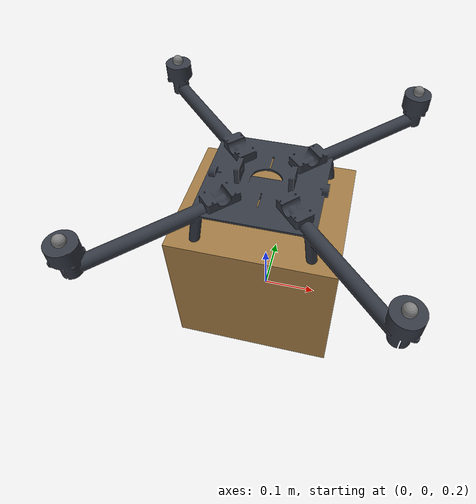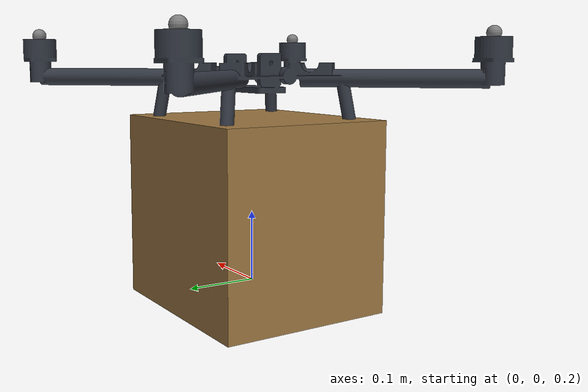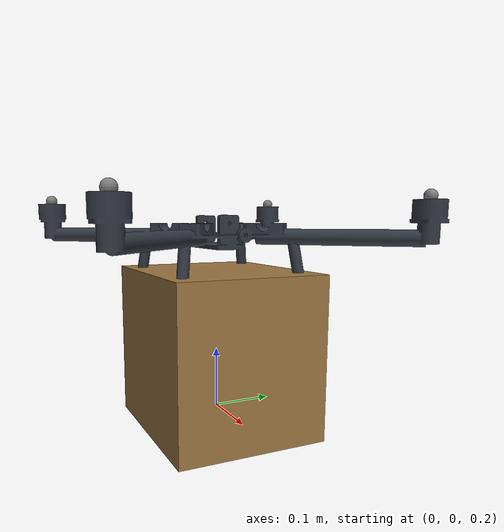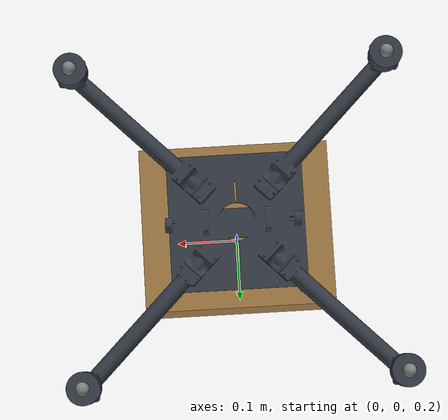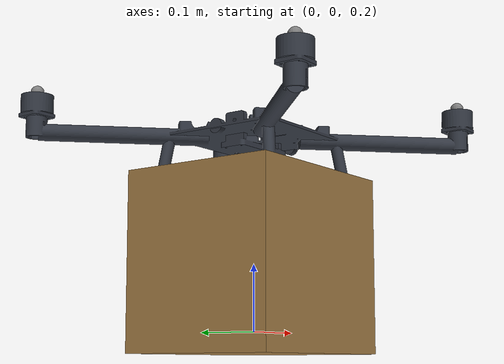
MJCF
<mujoco model="delivery_quad">
  <compiler angle="radian" meshdir="meshes"/>
  <option timestep="0.002" gravity="0 0 -9.81" integrator="RK4"/>
  <asset><mesh name="airframe" file="airframe.stl"/></asset>
  <worldbody>
    <body name="base_link" pos="0 0 0.5">
      <freejoint/>
      <inertial pos="0 0 0" mass="4.0700" fullinertia="0.077220 0.077220 0.127661 0.000000 0.000000 0.000000"/>
      <geom type="mesh" mesh="airframe" contype="0" conaffinity="0" rgba="0.2 0.22 0.26 1"/>
      <geom type="box" size="0.11 0.11 0.045" pos="0 0 0.0013" rgba="0.2 0.22 0.26 0"/>
      <site name="rotor0" pos="0.2298 0.2298 0.0513" size="0.01"/>
      <site name="rotor1" pos="-0.2298 0.2298 0.0513" size="0.01"/>
      <site name="rotor2" pos="-0.2298 -0.2298 0.0513" size="0.01"/>
      <site name="rotor3" pos="0.2298 -0.2298 0.0513" size="0.01"/>
      <body name="cardan_ring" pos="0 0 -0.0687">
        <joint name="cardan_roll" type="hinge" axis="1 0 0" range="-0.436 0.436" damping="0.02"/>
        <inertial pos="0 0 0" mass="0.06" diaginertia="1e-4 1e-4 1.8e-4"/>
        <body name="payload" pos="0 0 0">
          <joint name="cardan_pitch" type="hinge" axis="0 1 0" range="-0.436 0.436" damping="0.02"/>
          <inertial pos="0 0 -0.1300" mass="1.5000" diaginertia="0.016666 0.019346 0.018056"/>
          <geom type="box" size="0.1440 0.1240 0.1340" pos="0 0 -0.1300" rgba="0.62 0.47 0.26 1"/>
        </body>
      </body>
    </body>
  </worldbody>
  <actuator>
    <motor name="thrust0" site="rotor0" gear="0 0 1 0 0 0.016" ctrlrange="0 26"/>
    <motor name="thrust1" site="rotor1" gear="0 0 1 0 0 -0.016" ctrlrange="0 26"/>
    <motor name="thrust2" site="rotor2" gear="0 0 1 0 0 0.016" ctrlrange="0 26"/>
    <motor name="thrust3" site="rotor3" gear="0 0 1 0 0 -0.016" ctrlrange="0 26"/>
  </actuator>
</mujoco>
